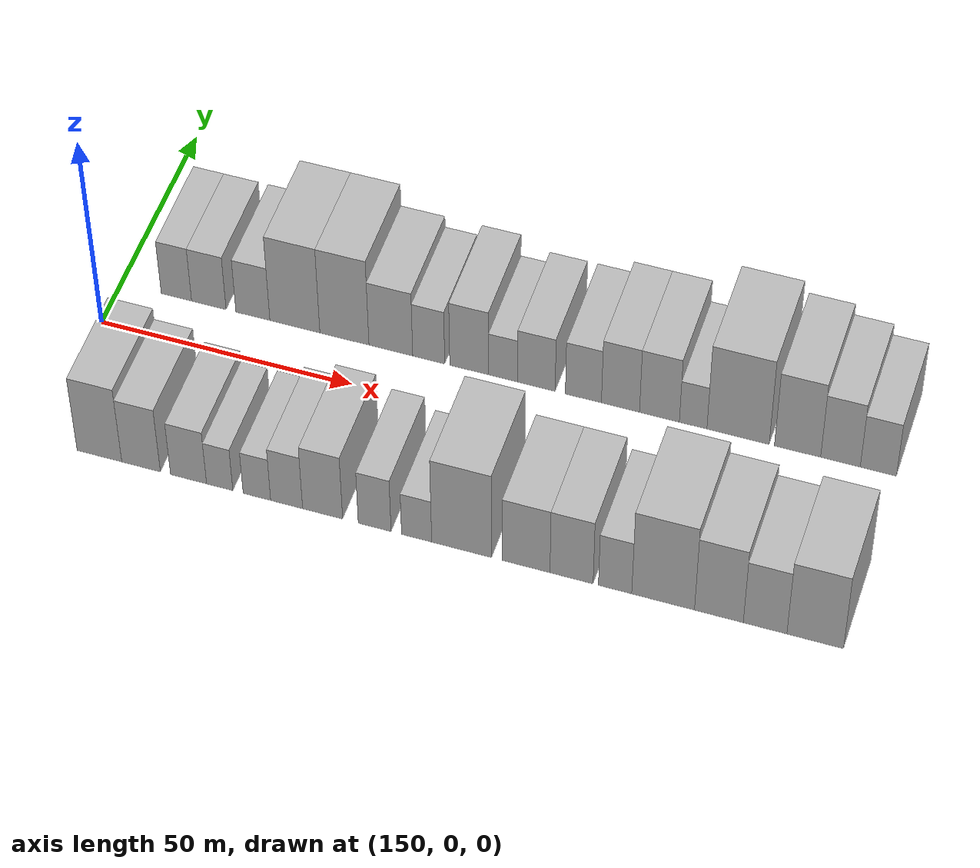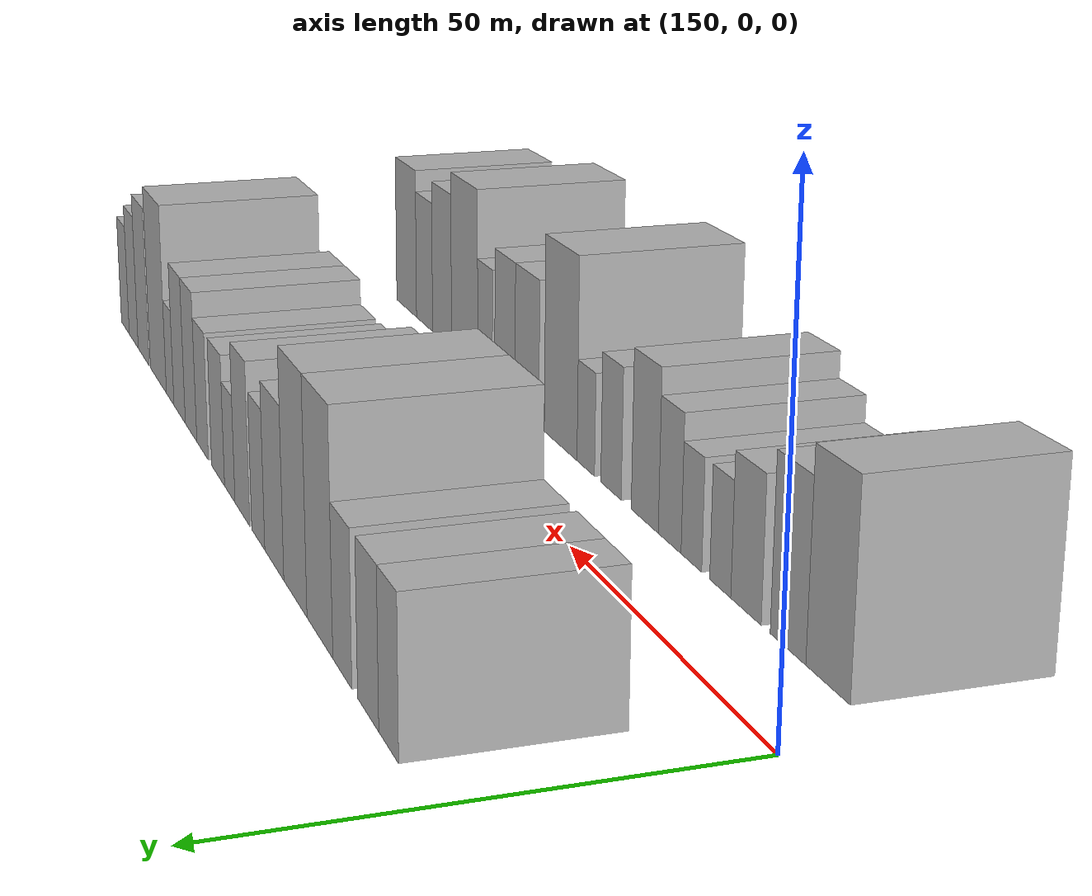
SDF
<sdf version="1.6">
 <world name="default">
  <model name="building_16">
   <static>1</static>
   <pose>161.1347 20.0000 0 0.000000 0.000000 1.570796</pose>
   <link name="link">
    <pose>0 0 7.50 0 0 0</pose>
    <collision name="collision"><geometry><box><size>20.0000 6.1667 15.0000</size></box></geometry></collision>
    <visual name="visual">
     <cast_shadows>0</cast_shadows>
     <geometry><box><size>20.0000 6.1667 15.0000</size></box></geometry>
     <material>
      <script>
       <uri>model://HANNAS_wall/materials/scripts</uri>
       <uri>model://HANNAS_wall/materials/textures</uri>
       <name>vrc/HANNAS_wall</name>
      </script>
     </material>
    </visual>
   </link>
  </model>
  <model name="building_17">
   <static>1</static>
   <pose>167.7172 20.0000 0 0.000000 0.000000 1.570796</pose>
   <link name="link">
    <pose>0 0 7.50 0 0 0</pose>
    <collision name="collision"><geometry><box><size>20.0000 6.9982 15.0000</size></box></geometry></collision>
    <visual name="visual">
     <cast_shadows>0</cast_shadows>
     <geometry><box><size>20.0000 6.9982 15.0000</size></box></geometry>
     <material>
      <script>
       <uri>model://HANNAS_wall/materials/scripts</uri>
       <uri>model://HANNAS_wall/materials/textures</uri>
       <name>vrc/HANNAS_wall</name>
      </script>
     </material>
    </visual>
   </link>
  </model>
  <model name="building_18">
   <static>1</static>
   <pose>176.6432 20.0000 0 0.000000 0.000000 1.570796</pose>
   <link name="link">
    <pose>0 0 7.50 0 0 0</pose>
    <collision name="collision"><geometry><box><size>20.0000 6.8539 15.0000</size></box></geometry></collision>
    <visual name="visual">
     <cast_shadows>0</cast_shadows>
     <geometry><box><size>20.0000 6.8539 15.0000</size></box></geometry>
     <material>
      <script>
       <uri>model://HANNAS_wall/materials/scripts</uri>
       <uri>model://HANNAS_wall/materials/textures</uri>
       <name>vrc/HANNAS_wall</name>
      </script>
     </material>
    </visual>
   </link>
  </model>
  <model name="building_19">
   <static>1</static>
   <pose>185.0944 20.0000 0 0.000000 0.000000 1.570796</pose>
   <link name="link">
    <pose>0 0 12.00 0 0 0</pose>
    <collision name="collision"><geometry><box><size>20.0000 10.0486 24.0000</size></box></geometry></collision>
    <visual name="visual">
     <cast_shadows>0</cast_shadows>
     <geometry><box><size>20.0000 10.0486 24.0000</size></box></geometry>
     <material>
      <script>
       <uri>model://HANNAS_wall/materials/scripts</uri>
       <uri>model://HANNAS_wall/materials/textures</uri>
       <name>vrc/HANNAS_wall</name>
      </script>
     </material>
    </visual>
   </link>
  </model>
  <model name="building_20">
   <static>1</static>
   <pose>195.0216 20.0000 0 0.000000 0.000000 1.570796</pose>
   <link name="link">
    <pose>0 0 12.00 0 0 0</pose>
    <collision name="collision"><geometry><box><size>20.0000 9.8058 24.0000</size></box></geometry></collision>
    <visual name="visual">
     <cast_shadows>0</cast_shadows>
     <geometry><box><size>20.0000 9.8058 24.0000</size></box></geometry>
     <material>
      <script>
       <uri>model://HANNAS_wall/materials/scripts</uri>
       <uri>model://HANNAS_wall/materials/textures</uri>
       <name>vrc/HANNAS_wall</name>
      </script>
     </material>
    </visual>
   </link>
  </model>
  <model name="building_21">
   <static>1</static>
   <pose>204.2765 20.0000 0 0.000000 0.000000 1.570796</pose>
   <link name="link">
    <pose>0 0 9.00 0 0 0</pose>
    <collision name="collision"><geometry><box><size>20.0000 8.7040 18.0000</size></box></geometry></collision>
    <visual name="visual">
     <cast_shadows>0</cast_shadows>
     <geometry><box><size>20.0000 8.7040 18.0000</size></box></geometry>
     <material>
      <script>
       <uri>model://HANNAS_wall/materials/scripts</uri>
       <uri>model://HANNAS_wall/materials/textures</uri>
       <name>vrc/HANNAS_wall</name>
      </script>
     </material>
    </visual>
   </link>
  </model>
  <model name="building_22">
   <static>1</static>
   <pose>211.7917 20.0000 0 0.000000 0.000000 1.570796</pose>
   <link name="link">
    <pose>0 0 7.50 0 0 0</pose>
    <collision name="collision"><geometry><box><size>20.0000 6.3265 15.0000</size></box></geometry></collision>
    <visual name="visual">
     <cast_shadows>0</cast_shadows>
     <geometry><box><size>20.0000 6.3265 15.0000</size></box></geometry>
     <material>
      <script>
       <uri>model://HANNAS_wall/materials/scripts</uri>
       <uri>model://HANNAS_wall/materials/textures</uri>
       <name>vrc/HANNAS_wall</name>
      </script>
     </material>
    </visual>
   </link>
  </model>
  <model name="building_23">
   <static>1</static>
   <pose>219.7814 20.0000 0 0.000000 0.000000 1.570796</pose>
   <link name="link">
    <pose>0 0 9.00 0 0 0</pose>
    <collision name="collision"><geometry><box><size>20.0000 7.6528 18.0000</size></box></geometry></collision>
    <visual name="visual">
     <cast_shadows>0</cast_shadows>
     <geometry><box><size>20.0000 7.6528 18.0000</size></box></geometry>
     <material>
      <script>
       <uri>model://HANNAS_wall/materials/scripts</uri>
       <uri>model://HANNAS_wall/materials/textures</uri>
       <name>vrc/HANNAS_wall</name>
      </script>
     </material>
    </visual>
   </link>
  </model>
  <model name="building_24">
   <static>1</static>
   <pose>226.4473 20.0000 0 0.000000 0.000000 1.570796</pose>
   <link name="link">
    <pose>0 0 6.00 0 0 0</pose>
    <collision name="collision"><geometry><box><size>20.0000 5.6790 12.0000</size></box></geometry></collision>
    <visual name="visual">
     <cast_shadows>0</cast_shadows>
     <geometry><box><size>20.0000 5.6790 12.0000</size></box></geometry>
     <material>
      <script>
       <uri>model://HANNAS_wall/materials/scripts</uri>
       <uri>model://HANNAS_wall/materials/textures</uri>
       <name>vrc/HANNAS_wall</name>
      </script>
     </material>
    </visual>
   </link>
  </model>
  <model name="building_25">
   <static>1</static>
   <pose>232.9609 20.0000 0 0.000000 0.000000 1.570796</pose>
   <link name="link">
    <pose>0 0 7.50 0 0 0</pose>
    <collision name="collision"><geometry><box><size>20.0000 7.3481 15.0000</size></box></geometry></collision>
    <visual name="visual">
     <cast_shadows>0</cast_shadows>
     <geometry><box><size>20.0000 7.3481 15.0000</size></box></geometry>
     <material>
      <script>
       <uri>model://HANNAS_wall/materials/scripts</uri>
       <uri>model://HANNAS_wall/materials/textures</uri>
       <name>vrc/HANNAS_wall</name>
      </script>
     </material>
    </visual>
   </link>
  </model>
  <model name="building_26">
   <static>1</static>
   <pose>242.1310 20.0000 0 0.000000 0.000000 1.570796</pose>
   <link name="link">
    <pose>0 0 7.50 0 0 0</pose>
    <collision name="collision"><geometry><box><size>20.0000 6.9921 15.0000</size></box></geometry></collision>
    <visual name="visual">
     <cast_shadows>0</cast_shadows>
     <geometry><box><size>20.0000 6.9921 15.0000</size></box></geometry>
     <material>
      <script>
       <uri>model://HANNAS_wall/materials/scripts</uri>
       <uri>model://HANNAS_wall/materials/textures</uri>
       <name>vrc/HANNAS_wall</name>
      </script>
     </material>
    </visual>
   </link>
  </model>
  <model name="building_27">
   <static>1</static>
   <pose>249.3128 20.0000 0 0.000000 0.000000 1.570796</pose>
   <link name="link">
    <pose>0 0 9.00 0 0 0</pose>
    <collision name="collision"><geometry><box><size>20.0000 7.3713 18.0000</size></box></geometry></collision>
    <visual name="visual">
     <cast_shadows>0</cast_shadows>
     <geometry><box><size>20.0000 7.3713 18.0000</size></box></geometry>
     <material>
      <script>
       <uri>model://HANNAS_wall/materials/scripts</uri>
       <uri>model://HANNAS_wall/materials/textures</uri>
       <name>vrc/HANNAS_wall</name>
      </script>
     </material>
    </visual>
   </link>
  </model>
  <model name="building_28">
   <static>1</static>
   <pose>256.8416 20.0000 0 0.000000 0.000000 1.570796</pose>
   <link name="link">
    <pose>0 0 9.00 0 0 0</pose>
    <collision name="collision"><geometry><box><size>20.0000 7.6865 18.0000</size></box></geometry></collision>
    <visual name="visual">
     <cast_shadows>0</cast_shadows>
     <geometry><box><size>20.0000 7.6865 18.0000</size></box></geometry>
     <material>
      <script>
       <uri>model://HANNAS_wall/materials/scripts</uri>
       <uri>model://HANNAS_wall/materials/textures</uri>
       <name>vrc/HANNAS_wall</name>
      </script>
     </material>
    </visual>
   </link>
  </model>
  <model name="building_29">
   <static>1</static>
   <pose>263.3319 20.0000 0 0.000000 0.000000 1.570796</pose>
   <link name="link">
    <pose>0 0 6.00 0 0 0</pose>
    <collision name="collision"><geometry><box><size>20.0000 5.2941 12.0000</size></box></geometry></collision>
    <visual name="visual">
     <cast_shadows>0</cast_shadows>
     <geometry><box><size>20.0000 5.2941 12.0000</size></box></geometry>
     <material>
      <script>
       <uri>model://HANNAS_wall/materials/scripts</uri>
       <uri>model://HANNAS_wall/materials/textures</uri>
       <name>vrc/HANNAS_wall</name>
      </script>
     </material>
    </visual>
   </link>
  </model>
  <model name="building_30">
   <static>1</static>
   <pose>271.9318 20.0000 0 0.000000 0.000000 1.570796</pose>
   <link name="link">
    <pose>0 0 12.00 0 0 0</pose>
    <collision name="collision"><geometry><box><size>20.0000 11.9057 24.0000</size></box></geometry></collision>
    <visual name="visual">
     <cast_shadows>0</cast_shadows>
     <geometry><box><size>20.0000 11.9057 24.0000</size></box></geometry>
     <material>
      <script>
       <uri>model://HANNAS_wall/materials/scripts</uri>
       <uri>model://HANNAS_wall/materials/textures</uri>
       <name>vrc/HANNAS_wall</name>
      </script>
     </material>
    </visual>
   </link>
  </model>
  <model name="building_31">
   <static>1</static>
   <pose>283.2652 20.0000 0 0.000000 0.000000 1.570796</pose>
   <link name="link">
    <pose>0 0 10.50 0 0 0</pose>
    <collision name="collision"><geometry><box><size>20.0000 8.7612 21.0000</size></box></geometry></collision>
    <visual name="visual">
     <cast_shadows>0</cast_shadows>
     <geometry><box><size>20.0000 8.7612 21.0000</size></box></geometry>
     <material>
      <script>
       <uri>model://HANNAS_wall/materials/scripts</uri>
       <uri>model://HANNAS_wall/materials/textures</uri>
       <name>vrc/HANNAS_wall</name>
      </script>
     </material>
    </visual>
   </link>
  </model>
  <model name="building_32">
   <static>1</static>
   <pose>291.3849 20.0000 0 0.000000 0.000000 1.570796</pose>
   <link name="link">
    <pose>0 0 9.00 0 0 0</pose>
    <collision name="collision"><geometry><box><size>20.0000 7.4781 18.0000</size></box></geometry></collision>
    <visual name="visual">
     <cast_shadows>0</cast_shadows>
     <geometry><box><size>20.0000 7.4781 18.0000</size></box></geometry>
     <material>
      <script>
       <uri>model://HANNAS_wall/materials/scripts</uri>
       <uri>model://HANNAS_wall/materials/textures</uri>
       <name>vrc/HANNAS_wall</name>
      </script>
     </material>
    </visual>
   </link>
  </model>
  <model name="building_33">
   <static>1</static>
   <pose>298.5321 20.0000 0 0.000000 0.000000 1.570796</pose>
   <link name="link">
    <pose>0 0 7.50 0 0 0</pose>
    <collision name="collision"><geometry><box><size>20.0000 6.8162 15.0000</size></box></geometry></collision>
    <visual name="visual">
     <cast_shadows>0</cast_shadows>
     <geometry><box><size>20.0000 6.8162 15.0000</size></box></geometry>
     <material>
      <script>
       <uri>model://HANNAS_wall/materials/scripts</uri>
       <uri>model://HANNAS_wall/materials/textures</uri>
       <name>vrc/HANNAS_wall</name>
      </script>
     </material>
    </visual>
   </link>
  </model>
  <model name="building_51">
   <static>1</static>
   <pose>161.3955 -20.0000 0 0.000000 0.000000 1.570796</pose>
   <link name="link">
    <pose>0 0 10.50 0 0 0</pose>
    <collision name="collision"><geometry><box><size>20.0000 8.8027 21.0000</size></box></geometry></collision>
    <visual name="visual">
     <cast_shadows>0</cast_shadows>
     <geometry><box><size>20.0000 8.8027 21.0000</size></box></geometry>
     <material>
      <script>
       <uri>model://HANNAS_wall/materials/scripts</uri>
       <uri>model://HANNAS_wall/materials/textures</uri>
       <name>vrc/HANNAS_wall</name>
      </script>
     </material>
    </visual>
   </link>
  </model>
  <model name="building_52">
   <static>1</static>
   <pose>169.5851 -20.0000 0 0.000000 0.000000 1.570796</pose>
   <link name="link">
    <pose>0 0 9.00 0 0 0</pose>
    <collision name="collision"><geometry><box><size>20.0000 7.5765 18.0000</size></box></geometry></collision>
    <visual name="visual">
     <cast_shadows>0</cast_shadows>
     <geometry><box><size>20.0000 7.5765 18.0000</size></box></geometry>
     <material>
      <script>
       <uri>model://HANNAS_wall/materials/scripts</uri>
       <uri>model://HANNAS_wall/materials/textures</uri>
       <name>vrc/HANNAS_wall</name>
      </script>
     </material>
    </visual>
   </link>
  </model>
  <model name="building_53">
   <static>1</static>
   <pose>178.8874 -20.0000 0 0.000000 0.000000 1.570796</pose>
   <link name="link">
    <pose>0 0 7.50 0 0 0</pose>
    <collision name="collision"><geometry><box><size>20.0000 7.0282 15.0000</size></box></geometry></collision>
    <visual name="visual">
     <cast_shadows>0</cast_shadows>
     <geometry><box><size>20.0000 7.0282 15.0000</size></box></geometry>
     <material>
      <script>
       <uri>model://HANNAS_wall/materials/scripts</uri>
       <uri>model://HANNAS_wall/materials/textures</uri>
       <name>vrc/HANNAS_wall</name>
      </script>
     </material>
    </visual>
   </link>
  </model>
  <model name="building_54">
   <static>1</static>
   <pose>184.9580 -20.0000 0 0.000000 0.000000 1.570796</pose>
   <link name="link">
    <pose>0 0 6.00 0 0 0</pose>
    <collision name="collision"><geometry><box><size>20.0000 5.1129 12.0000</size></box></geometry></collision>
    <visual name="visual">
     <cast_shadows>0</cast_shadows>
     <geometry><box><size>20.0000 5.1129 12.0000</size></box></geometry>
     <material>
      <script>
       <uri>model://HANNAS_wall/materials/scripts</uri>
       <uri>model://HANNAS_wall/materials/textures</uri>
       <name>vrc/HANNAS_wall</name>
      </script>
     </material>
    </visual>
   </link>
  </model>
  <model name="building_55">
   <static>1</static>
   <pose>192.1785 -20.0000 0 0.000000 0.000000 1.570796</pose>
   <link name="link">
    <pose>0 0 6.00 0 0 0</pose>
    <collision name="collision"><geometry><box><size>20.0000 5.3281 12.0000</size></box></geometry></collision>
    <visual name="visual">
     <cast_shadows>0</cast_shadows>
     <geometry><box><size>20.0000 5.3281 12.0000</size></box></geometry>
     <material>
      <script>
       <uri>model://HANNAS_wall/materials/scripts</uri>
       <uri>model://HANNAS_wall/materials/textures</uri>
       <name>vrc/HANNAS_wall</name>
      </script>
     </material>
    </visual>
   </link>
  </model>
  <model name="building_56">
   <static>1</static>
   <pose>197.9270 -20.0000 0 0.000000 0.000000 1.570796</pose>
   <link name="link">
    <pose>0 0 7.50 0 0 0</pose>
    <collision name="collision"><geometry><box><size>20.0000 6.1690 15.0000</size></box></geometry></collision>
    <visual name="visual">
     <cast_shadows>0</cast_shadows>
     <geometry><box><size>20.0000 6.1690 15.0000</size></box></geometry>
     <material>
      <script>
       <uri>model://HANNAS_wall/materials/scripts</uri>
       <uri>model://HANNAS_wall/materials/textures</uri>
       <name>vrc/HANNAS_wall</name>
      </script>
     </material>
    </visual>
   </link>
  </model>
  <model name="building_57">
   <static>1</static>
   <pose>204.8581 -20.0000 0 0.000000 0.000000 1.570796</pose>
   <link name="link">
    <pose>0 0 9.00 0 0 0</pose>
    <collision name="collision"><geometry><box><size>20.0000 7.6932 18.0000</size></box></geometry></collision>
    <visual name="visual">
     <cast_shadows>0</cast_shadows>
     <geometry><box><size>20.0000 7.6932 18.0000</size></box></geometry>
     <material>
      <script>
       <uri>model://HANNAS_wall/materials/scripts</uri>
       <uri>model://HANNAS_wall/materials/textures</uri>
       <name>vrc/HANNAS_wall</name>
      </script>
     </material>
    </visual>
   </link>
  </model>
  <model name="building_58">
   <static>1</static>
   <pose>214.8373 -20.0000 0 0.000000 0.000000 1.570796</pose>
   <link name="link">
    <pose>0 0 7.50 0 0 0</pose>
    <collision name="collision"><geometry><box><size>20.0000 6.2652 15.0000</size></box></geometry></collision>
    <visual name="visual">
     <cast_shadows>0</cast_shadows>
     <geometry><box><size>20.0000 6.2652 15.0000</size></box></geometry>
     <material>
      <script>
       <uri>model://HANNAS_wall/materials/scripts</uri>
       <uri>model://HANNAS_wall/materials/textures</uri>
       <name>vrc/HANNAS_wall</name>
      </script>
     </material>
    </visual>
   </link>
  </model>
  <model name="building_59">
   <static>1</static>
   <pose>222.8343 -20.0000 0 0.000000 0.000000 1.570796</pose>
   <link name="link">
    <pose>0 0 6.00 0 0 0</pose>
    <collision name="collision"><geometry><box><size>20.0000 5.7290 12.0000</size></box></geometry></collision>
    <visual name="visual">
     <cast_shadows>0</cast_shadows>
     <geometry><box><size>20.0000 5.7290 12.0000</size></box></geometry>
     <material>
      <script>
       <uri>model://HANNAS_wall/materials/scripts</uri>
       <uri>model://HANNAS_wall/materials/textures</uri>
       <name>vrc/HANNAS_wall</name>
      </script>
     </material>
    </visual>
   </link>
  </model>
  <model name="building_60">
   <static>1</static>
   <pose>231.3630 -20.0000 0 0.000000 0.000000 1.570796</pose>
   <link name="link">
    <pose>0 0 12.00 0 0 0</pose>
    <collision name="collision"><geometry><box><size>20.0000 11.3284 24.0000</size></box></geometry></collision>
    <visual name="visual">
     <cast_shadows>0</cast_shadows>
     <geometry><box><size>20.0000 11.3284 24.0000</size></box></geometry>
     <material>
      <script>
       <uri>model://HANNAS_wall/materials/scripts</uri>
       <uri>model://HANNAS_wall/materials/textures</uri>
       <name>vrc/HANNAS_wall</name>
      </script>
     </material>
    </visual>
   </link>
  </model>
  <model name="building_61">
   <static>1</static>
   <pose>243.5149 -20.0000 0 0.000000 0.000000 1.570796</pose>
   <link name="link">
    <pose>0 0 9.00 0 0 0</pose>
    <collision name="collision"><geometry><box><size>20.0000 8.9752 18.0000</size></box></geometry></collision>
    <visual name="visual">
     <cast_shadows>0</cast_shadows>
     <geometry><box><size>20.0000 8.9752 18.0000</size></box></geometry>
     <material>
      <script>
       <uri>model://HANNAS_wall/materials/scripts</uri>
       <uri>model://HANNAS_wall/materials/textures</uri>
       <name>vrc/HANNAS_wall</name>
      </script>
     </material>
    </visual>
   </link>
  </model>
  <model name="building_62">
   <static>1</static>
   <pose>252.0324 -20.0000 0 0.000000 0.000000 1.570796</pose>
   <link name="link">
    <pose>0 0 9.00 0 0 0</pose>
    <collision name="collision"><geometry><box><size>20.0000 8.0598 18.0000</size></box></geometry></collision>
    <visual name="visual">
     <cast_shadows>0</cast_shadows>
     <geometry><box><size>20.0000 8.0598 18.0000</size></box></geometry>
     <material>
      <script>
       <uri>model://HANNAS_wall/materials/scripts</uri>
       <uri>model://HANNAS_wall/materials/textures</uri>
       <name>vrc/HANNAS_wall</name>
      </script>
     </material>
    </visual>
   </link>
  </model>
  <model name="building_63">
   <static>1</static>
   <pose>260.1530 -20.0000 0 0.000000 0.000000 1.570796</pose>
   <link name="link">
    <pose>0 0 7.50 0 0 0</pose>
    <collision name="collision"><geometry><box><size>20.0000 6.1815 15.0000</size></box></geometry></collision>
    <visual name="visual">
     <cast_shadows>0</cast_shadows>
     <geometry><box><size>20.0000 6.1815 15.0000</size></box></geometry>
     <material>
      <script>
       <uri>model://HANNAS_wall/materials/scripts</uri>
       <uri>model://HANNAS_wall/materials/textures</uri>
       <name>vrc/HANNAS_wall</name>
      </script>
     </material>
    </visual>
   </link>
  </model>
  <model name="building_64">
   <static>1</static>
   <pose>269.0494 -20.0000 0 0.000000 0.000000 1.570796</pose>
   <link name="link">
    <pose>0 0 12.00 0 0 0</pose>
    <collision name="collision"><geometry><box><size>20.0000 11.6114 24.0000</size></box></geometry></collision>
    <visual name="visual">
     <cast_shadows>0</cast_shadows>
     <geometry><box><size>20.0000 11.6114 24.0000</size></box></geometry>
     <material>
      <script>
       <uri>model://HANNAS_wall/materials/scripts</uri>
       <uri>model://HANNAS_wall/materials/textures</uri>
       <name>vrc/HANNAS_wall</name>
      </script>
     </material>
    </visual>
   </link>
  </model>
  <model name="building_65">
   <static>1</static>
   <pose>279.3371 -20.0000 0 0.000000 0.000000 1.570796</pose>
   <link name="link">
    <pose>0 0 10.50 0 0 0</pose>
    <collision name="collision"><geometry><box><size>20.0000 8.9640 21.0000</size></box></geometry></collision>
    <visual name="visual">
     <cast_shadows>0</cast_shadows>
     <geometry><box><size>20.0000 8.9640 21.0000</size></box></geometry>
     <material>
      <script>
       <uri>model://HANNAS_wall/materials/scripts</uri>
       <uri>model://HANNAS_wall/materials/textures</uri>
       <name>vrc/HANNAS_wall</name>
      </script>
     </material>
    </visual>
   </link>
  </model>
  <model name="building_66">
   <static>1</static>
   <pose>287.8031 -20.0000 0 0.000000 0.000000 1.570796</pose>
   <link name="link">
    <pose>0 0 9.00 0 0 0</pose>
    <collision name="collision"><geometry><box><size>20.0000 7.9680 18.0000</size></box></geometry></collision>
    <visual name="visual">
     <cast_shadows>0</cast_shadows>
     <geometry><box><size>20.0000 7.9680 18.0000</size></box></geometry>
     <material>
      <script>
       <uri>model://HANNAS_wall/materials/scripts</uri>
       <uri>model://HANNAS_wall/materials/textures</uri>
       <name>vrc/HANNAS_wall</name>
      </script>
     </material>
    </visual>
   </link>
  </model>
  <model name="building_67">
   <static>1</static>
   <pose>296.9387 -20.0000 0 0.000000 0.000000 1.570796</pose>
   <link name="link">
    <pose>0 0 10.50 0 0 0</pose>
    <collision name="collision"><geometry><box><size>20.0000 10.3033 21.0000</size></box></geometry></collision>
    <visual name="visual">
     <cast_shadows>0</cast_shadows>
     <geometry><box><size>20.0000 10.3033 21.0000</size></box></geometry>
     <material>
      <script>
       <uri>model://HANNAS_wall/materials/scripts</uri>
       <uri>model://HANNAS_wall/materials/textures</uri>
       <name>vrc/HANNAS_wall</name>
      </script>
     </material>
    </visual>
   </link>
  </model>
 </world>
</sdf>
